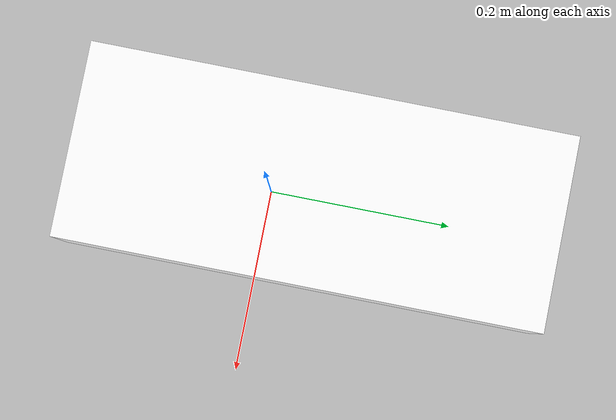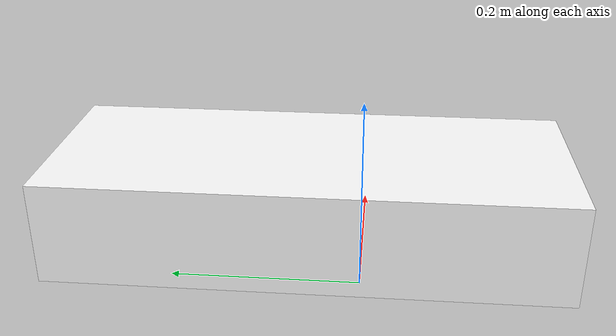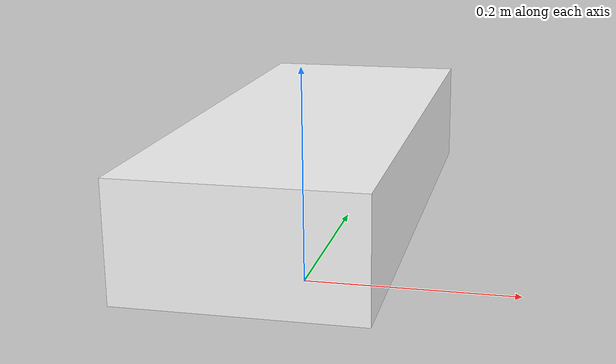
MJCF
<mujoco model="curved_surface">
  <asset>
    <mesh file="meshes/tria_part.stl" name="curved_mesh" scale="0.01 0.01 0.01"/>
  </asset>
  <worldbody>
    <body>
      <body name="object">
        <geom pos="0.1 0.3 0.15" mesh="curved_mesh" rgba="1 1 1 0.9" quat = "0 0.7071 -0.7071 0 " type="mesh" density="1000" condim="1" solimp="10 10 0.9" solref=".01 .01" friction="1 1 0.1" group="0"/>
      </body>
      <site rgba="0 0 0 0" size="0.005" pos="0 0 -0.082" name="bottom_site"/>
      <site rgba="0 0 0 0" size="0.005" pos="0 0 0" name="top_site"/>
      <site rgba="0 0 0 0" size="0.005" pos="0. 0. 0" name="horizontal_radius_site"/>
    </body>
  </worldbody>
</mujoco>
